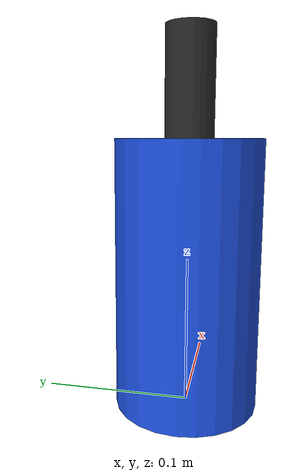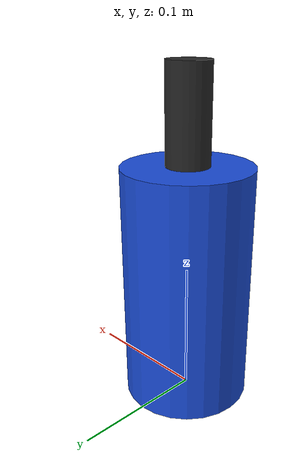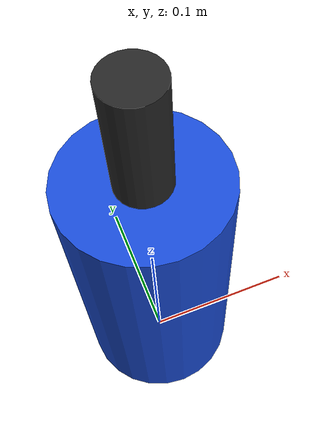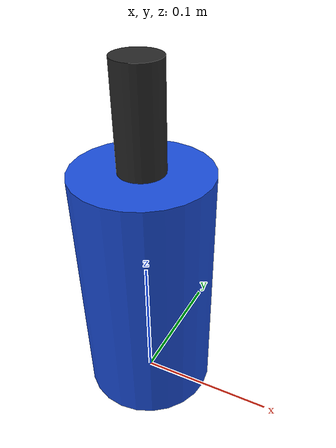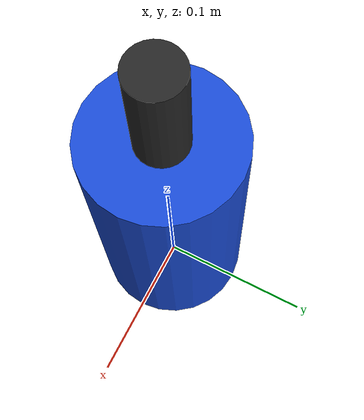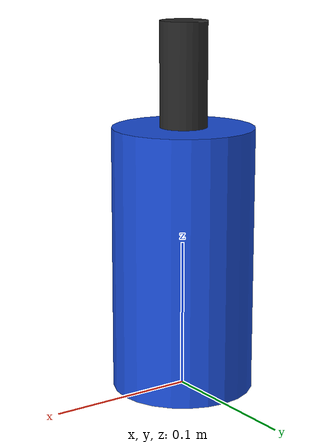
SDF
<?xml version="1.0" ?>
<!-- GENERATED by bartender_gazebo/scripts/make_bartender_scene.py; stout debug bottle.
     Edit the generator, not this file. Colors are debug aids only. -->
<sdf version="1.9">
  <model name="debug_bottle_blue">
    <!-- Link origin is the centre of the bottle's base, like the whiskey
         and cola models, so a standing pose is always z = table top. -->
    <link name="body">
      <inertial>
        <pose>0 0 0.09 0 0 0</pose>
        <mass>0.85</mass>
        <inertia>
          <ixx>2.784600e-03</ixx>
          <iyy>2.784600e-03</iyy>
          <izz>9.792000e-04</izz>
          <ixy>0</ixy>
          <ixz>0</ixz>
          <iyz>0</iyz>
        </inertia>
      </inertial>
      <collision name="body_collision">
        <pose>0 0 0.09 0 0 0</pose>
        <geometry>
          <cylinder>
            <radius>0.048</radius>
            <length>0.18</length>
          </cylinder>
        </geometry>
        <surface>
          <friction>
            <ode>
              <mu>0.9</mu>
              <mu2>0.9</mu2>
            </ode>
          </friction>
        </surface>
      </collision>
      <visual name="body_visual">
        <pose>0 0 0.09 0 0 0</pose>
        <geometry>
          <cylinder>
            <radius>0.048</radius>
            <length>0.18</length>
          </cylinder>
        </geometry>
        <material>
          <ambient>0.1 0.3 0.85 1</ambient>
          <diffuse>0.1 0.3 0.85 1</diffuse>
          <specular>0.2 0.2 0.2 0.3</specular>
        </material>
      </visual>
      <collision name="neck_collision">
        <pose>0 0 0.215 0 0 0</pose>
        <geometry>
          <cylinder>
            <radius>0.016</radius>
            <length>0.07</length>
          </cylinder>
        </geometry>
        <surface>
          <friction>
            <ode>
              <mu>0.9</mu>
              <mu2>0.9</mu2>
            </ode>
          </friction>
        </surface>
      </collision>
      <visual name="neck_visual">
        <pose>0 0 0.215 0 0 0</pose>
        <geometry>
          <cylinder>
            <radius>0.016</radius>
            <length>0.07</length>
          </cylinder>
        </geometry>
        <material>
          <ambient>0.15 0.15 0.15 1</ambient>
          <diffuse>0.15 0.15 0.15 1</diffuse>
          <specular>0.3 0.3 0.3 0.3</specular>
        </material>
      </visual>
    </link>
  </model>
</sdf>
